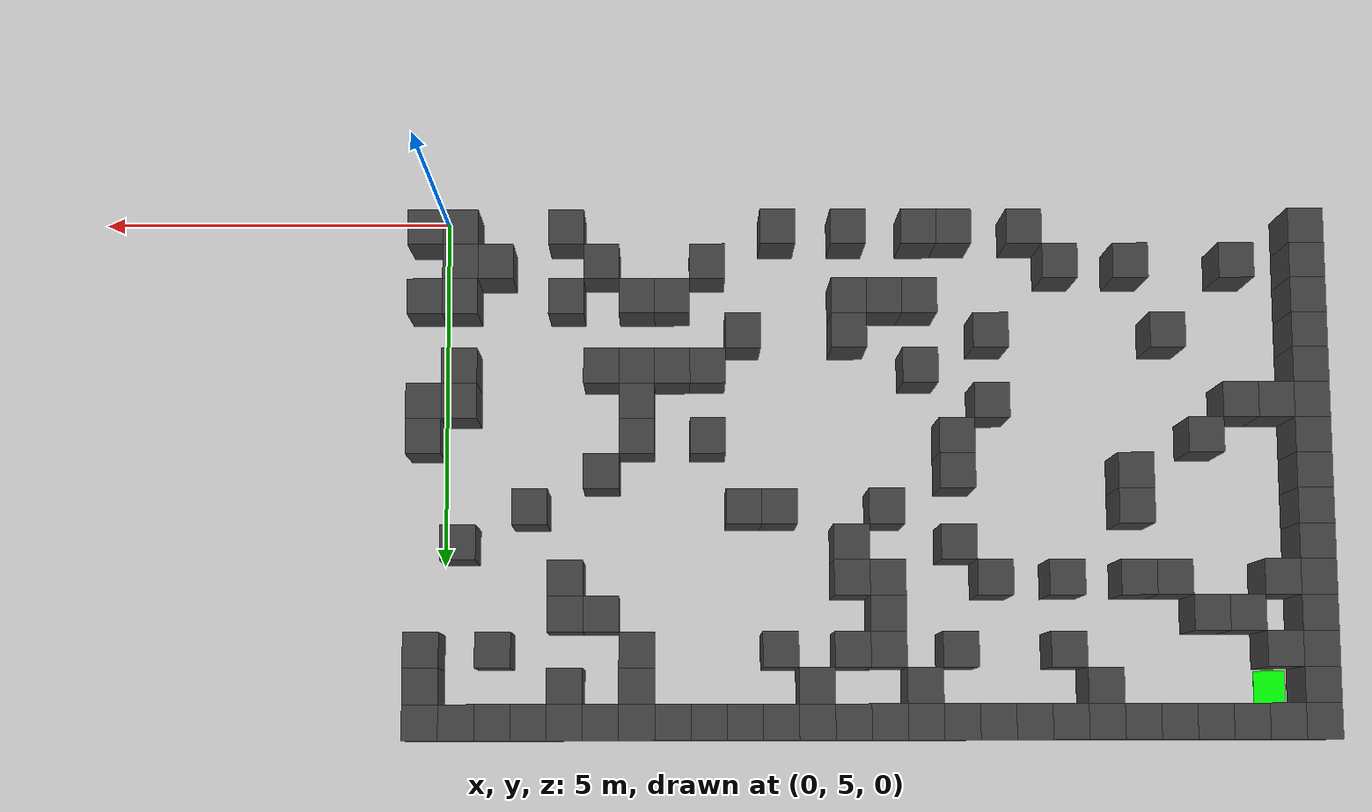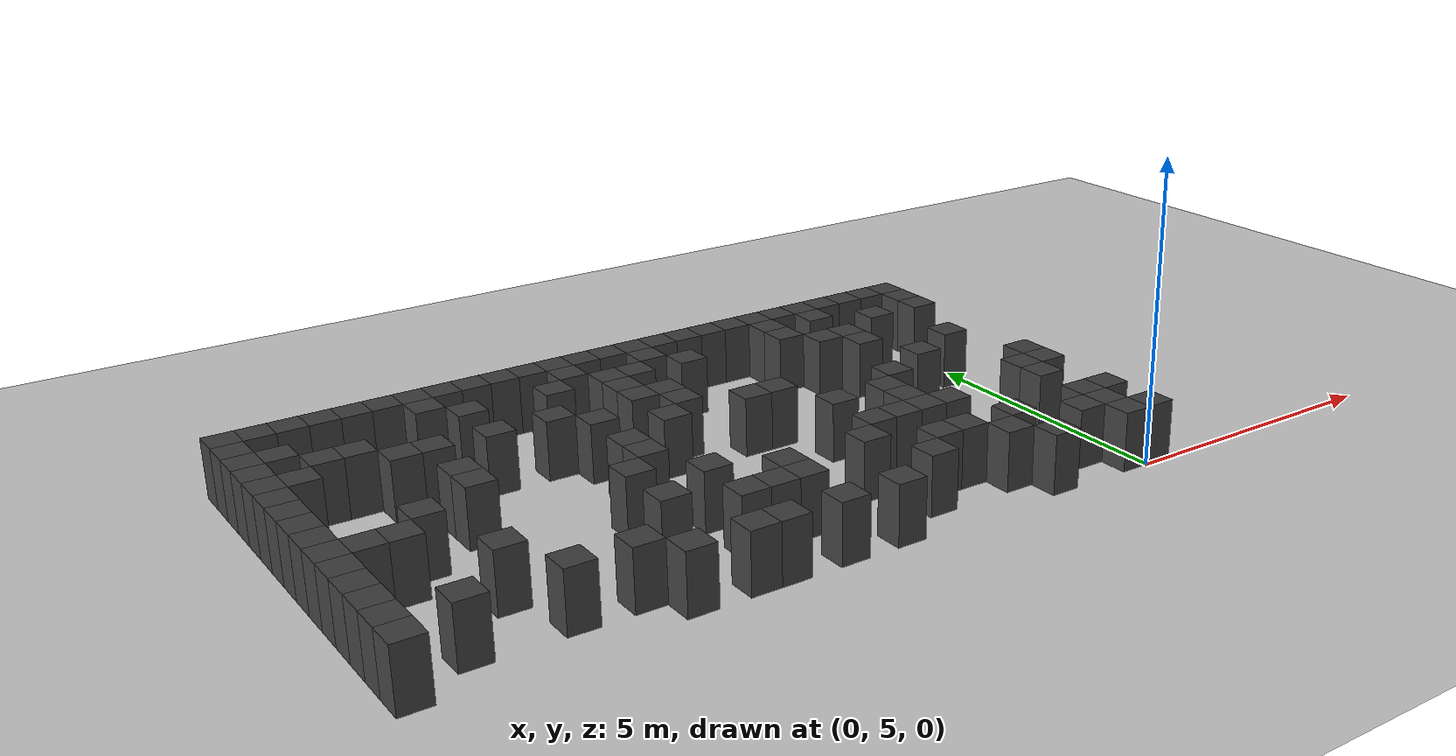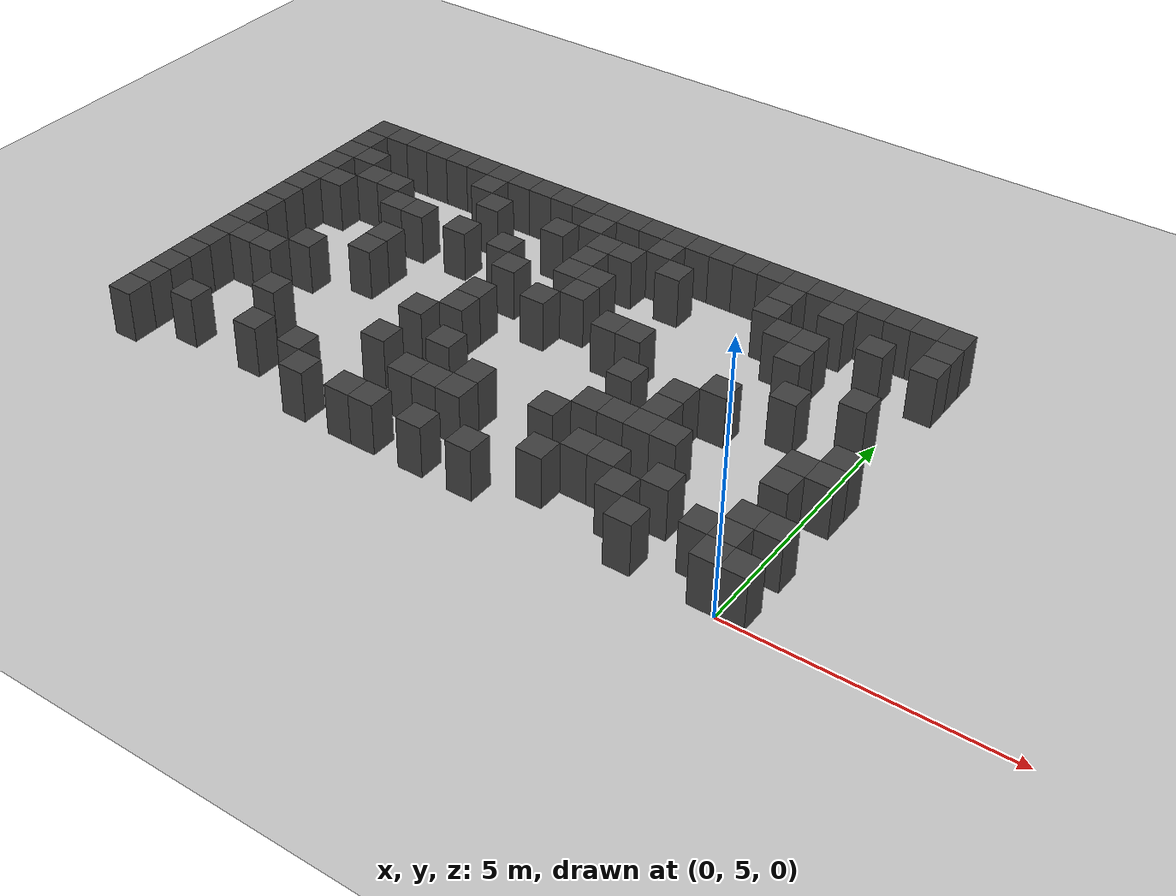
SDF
<sdf version="1.7">
 <world name="map_4951">
  <model name="ground_plane">
   <static>true</static>
   <link name="link">
    <collision name="collision">
     <geometry><plane><normal>0 0 1</normal><size>200 200</size></plane></geometry>
    </collision>
    <visual name="visual">
     <geometry><plane><normal>0 0 1</normal><size>200 200</size></plane></geometry>
     <material><ambient>0.8 0.8 0.8 1</ambient><diffuse>0.8 0.8 0.8 1</diffuse></material>
    </visual>
   </link>
  </model>
  <model name="maze_environment">
   <static>true</static>
   <link name="wall_0">
    <pose>-12.250 12.250 0.500 0 0 0</pose>
    <collision name="col"><geometry><box><size>0.5 0.5 1.0</size></box></geometry></collision>
    <visual name="vis">
     <geometry><box><size>0.5 0.5 1.0</size></box></geometry>
     <material><ambient>0.15 0.15 0.15 1</ambient><diffuse>0.25 0.25 0.25 1</diffuse></material>
    </visual>
   </link>
   <link name="wall_1">
    <pose>-11.750 12.250 0.500 0 0 0</pose>
    <collision name="col"><geometry><box><size>0.5 0.5 1.0</size></box></geometry></collision>
    <visual name="vis">
     <geometry><box><size>0.5 0.5 1.0</size></box></geometry>
     <material><ambient>0.15 0.15 0.15 1</ambient><diffuse>0.25 0.25 0.25 1</diffuse></material>
    </visual>
   </link>
   <link name="wall_2">
    <pose>-11.250 12.250 0.500 0 0 0</pose>
    <collision name="col"><geometry><box><size>0.5 0.5 1.0</size></box></geometry></collision>
    <visual name="vis">
     <geometry><box><size>0.5 0.5 1.0</size></box></geometry>
     <material><ambient>0.15 0.15 0.15 1</ambient><diffuse>0.25 0.25 0.25 1</diffuse></material>
    </visual>
   </link>
   <link name="wall_3">
    <pose>-10.750 12.250 0.500 0 0 0</pose>
    <collision name="col"><geometry><box><size>0.5 0.5 1.0</size></box></geometry></collision>
    <visual name="vis">
     <geometry><box><size>0.5 0.5 1.0</size></box></geometry>
     <material><ambient>0.15 0.15 0.15 1</ambient><diffuse>0.25 0.25 0.25 1</diffuse></material>
    </visual>
   </link>
   <link name="wall_4">
    <pose>-10.250 12.250 0.500 0 0 0</pose>
    <collision name="col"><geometry><box><size>0.5 0.5 1.0</size></box></geometry></collision>
    <visual name="vis">
     <geometry><box><size>0.5 0.5 1.0</size></box></geometry>
     <material><ambient>0.15 0.15 0.15 1</ambient><diffuse>0.25 0.25 0.25 1</diffuse></material>
    </visual>
   </link>
   <link name="wall_5">
    <pose>-9.750 12.250 0.500 0 0 0</pose>
    <collision name="col"><geometry><box><size>0.5 0.5 1.0</size></box></geometry></collision>
    <visual name="vis">
     <geometry><box><size>0.5 0.5 1.0</size></box></geometry>
     <material><ambient>0.15 0.15 0.15 1</ambient><diffuse>0.25 0.25 0.25 1</diffuse></material>
    </visual>
   </link>
   <link name="wall_6">
    <pose>-9.250 12.250 0.500 0 0 0</pose>
    <collision name="col"><geometry><box><size>0.5 0.5 1.0</size></box></geometry></collision>
    <visual name="vis">
     <geometry><box><size>0.5 0.5 1.0</size></box></geometry>
     <material><ambient>0.15 0.15 0.15 1</ambient><diffuse>0.25 0.25 0.25 1</diffuse></material>
    </visual>
   </link>
   <link name="wall_7">
    <pose>-8.750 12.250 0.500 0 0 0</pose>
    <collision name="col"><geometry><box><size>0.5 0.5 1.0</size></box></geometry></collision>
    <visual name="vis">
     <geometry><box><size>0.5 0.5 1.0</size></box></geometry>
     <material><ambient>0.15 0.15 0.15 1</ambient><diffuse>0.25 0.25 0.25 1</diffuse></material>
    </visual>
   </link>
   <link name="wall_8">
    <pose>-8.250 12.250 0.500 0 0 0</pose>
    <collision name="col"><geometry><box><size>0.5 0.5 1.0</size></box></geometry></collision>
    <visual name="vis">
     <geometry><box><size>0.5 0.5 1.0</size></box></geometry>
     <material><ambient>0.15 0.15 0.15 1</ambient><diffuse>0.25 0.25 0.25 1</diffuse></material>
    </visual>
   </link>
   <link name="wall_9">
    <pose>-7.750 12.250 0.500 0 0 0</pose>
    <collision name="col"><geometry><box><size>0.5 0.5 1.0</size></box></geometry></collision>
    <visual name="vis">
     <geometry><box><size>0.5 0.5 1.0</size></box></geometry>
     <material><ambient>0.15 0.15 0.15 1</ambient><diffuse>0.25 0.25 0.25 1</diffuse></material>
    </visual>
   </link>
   <link name="wall_10">
    <pose>-7.250 12.250 0.500 0 0 0</pose>
    <collision name="col"><geometry><box><size>0.5 0.5 1.0</size></box></geometry></collision>
    <visual name="vis">
     <geometry><box><size>0.5 0.5 1.0</size></box></geometry>
     <material><ambient>0.15 0.15 0.15 1</ambient><diffuse>0.25 0.25 0.25 1</diffuse></material>
    </visual>
   </link>
   <link name="wall_11">
    <pose>-6.750 12.250 0.500 0 0 0</pose>
    <collision name="col"><geometry><box><size>0.5 0.5 1.0</size></box></geometry></collision>
    <visual name="vis">
     <geometry><box><size>0.5 0.5 1.0</size></box></geometry>
     <material><ambient>0.15 0.15 0.15 1</ambient><diffuse>0.25 0.25 0.25 1</diffuse></material>
    </visual>
   </link>
   <link name="wall_12">
    <pose>-6.250 12.250 0.500 0 0 0</pose>
    <collision name="col"><geometry><box><size>0.5 0.5 1.0</size></box></geometry></collision>
    <visual name="vis">
     <geometry><box><size>0.5 0.5 1.0</size></box></geometry>
     <material><ambient>0.15 0.15 0.15 1</ambient><diffuse>0.25 0.25 0.25 1</diffuse></material>
    </visual>
   </link>
   <link name="wall_13">
    <pose>-5.750 12.250 0.500 0 0 0</pose>
    <collision name="col"><geometry><box><size>0.5 0.5 1.0</size></box></geometry></collision>
    <visual name="vis">
     <geometry><box><size>0.5 0.5 1.0</size></box></geometry>
     <material><ambient>0.15 0.15 0.15 1</ambient><diffuse>0.25 0.25 0.25 1</diffuse></material>
    </visual>
   </link>
   <link name="wall_14">
    <pose>-5.250 12.250 0.500 0 0 0</pose>
    <collision name="col"><geometry><box><size>0.5 0.5 1.0</size></box></geometry></collision>
    <visual name="vis">
     <geometry><box><size>0.5 0.5 1.0</size></box></geometry>
     <material><ambient>0.15 0.15 0.15 1</ambient><diffuse>0.25 0.25 0.25 1</diffuse></material>
    </visual>
   </link>
   <link name="wall_15">
    <pose>-4.750 12.250 0.500 0 0 0</pose>
    <collision name="col"><geometry><box><size>0.5 0.5 1.0</size></box></geometry></collision>
    <visual name="vis">
     <geometry><box><size>0.5 0.5 1.0</size></box></geometry>
     <material><ambient>0.15 0.15 0.15 1</ambient><diffuse>0.25 0.25 0.25 1</diffuse></material>
    </visual>
   </link>
   <link name="wall_16">
    <pose>-4.250 12.250 0.500 0 0 0</pose>
    <collision name="col"><geometry><box><size>0.5 0.5 1.0</size></box></geometry></collision>
    <visual name="vis">
     <geometry><box><size>0.5 0.5 1.0</size></box></geometry>
     <material><ambient>0.15 0.15 0.15 1</ambient><diffuse>0.25 0.25 0.25 1</diffuse></material>
    </visual>
   </link>
   <link name="wall_17">
    <pose>-3.750 12.250 0.500 0 0 0</pose>
    <collision name="col"><geometry><box><size>0.5 0.5 1.0</size></box></geometry></collision>
    <visual name="vis">
     <geometry><box><size>0.5 0.5 1.0</size></box></geometry>
     <material><ambient>0.15 0.15 0.15 1</ambient><diffuse>0.25 0.25 0.25 1</diffuse></material>
    </visual>
   </link>
   <link name="wall_18">
    <pose>-3.250 12.250 0.500 0 0 0</pose>
    <collision name="col"><geometry><box><size>0.5 0.5 1.0</size></box></geometry></collision>
    <visual name="vis">
     <geometry><box><size>0.5 0.5 1.0</size></box></geometry>
     <material><ambient>0.15 0.15 0.15 1</ambient><diffuse>0.25 0.25 0.25 1</diffuse></material>
    </visual>
   </link>
   <link name="wall_19">
    <pose>-2.750 12.250 0.500 0 0 0</pose>
    <collision name="col"><geometry><box><size>0.5 0.5 1.0</size></box></geometry></collision>
    <visual name="vis">
     <geometry><box><size>0.5 0.5 1.0</size></box></geometry>
     <material><ambient>0.15 0.15 0.15 1</ambient><diffuse>0.25 0.25 0.25 1</diffuse></material>
    </visual>
   </link>
   <link name="wall_20">
    <pose>-2.250 12.250 0.500 0 0 0</pose>
    <collision name="col"><geometry><box><size>0.5 0.5 1.0</size></box></geometry></collision>
    <visual name="vis">
     <geometry><box><size>0.5 0.5 1.0</size></box></geometry>
     <material><ambient>0.15 0.15 0.15 1</ambient><diffuse>0.25 0.25 0.25 1</diffuse></material>
    </visual>
   </link>
   <link name="wall_21">
    <pose>-1.750 12.250 0.500 0 0 0</pose>
    <collision name="col"><geometry><box><size>0.5 0.5 1.0</size></box></geometry></collision>
    <visual name="vis">
     <geometry><box><size>0.5 0.5 1.0</size></box></geometry>
     <material><ambient>0.15 0.15 0.15 1</ambient><diffuse>0.25 0.25 0.25 1</diffuse></material>
    </visual>
   </link>
   <link name="wall_22">
    <pose>-1.250 12.250 0.500 0 0 0</pose>
    <collision name="col"><geometry><box><size>0.5 0.5 1.0</size></box></geometry></collision>
    <visual name="vis">
     <geometry><box><size>0.5 0.5 1.0</size></box></geometry>
     <material><ambient>0.15 0.15 0.15 1</ambient><diffuse>0.25 0.25 0.25 1</diffuse></material>
    </visual>
   </link>
   <link name="wall_23">
    <pose>-0.750 12.250 0.500 0 0 0</pose>
    <collision name="col"><geometry><box><size>0.5 0.5 1.0</size></box></geometry></collision>
    <visual name="vis">
     <geometry><box><size>0.5 0.5 1.0</size></box></geometry>
     <material><ambient>0.15 0.15 0.15 1</ambient><diffuse>0.25 0.25 0.25 1</diffuse></material>
    </visual>
   </link>
   <link name="wall_24">
    <pose>-0.250 12.250 0.500 0 0 0</pose>
    <collision name="col"><geometry><box><size>0.5 0.5 1.0</size></box></geometry></collision>
    <visual name="vis">
     <geometry><box><size>0.5 0.5 1.0</size></box></geometry>
     <material><ambient>0.15 0.15 0.15 1</ambient><diffuse>0.25 0.25 0.25 1</diffuse></material>
    </visual>
   </link>
   <link name="wall_25">
    <pose>0.250 12.250 0.500 0 0 0</pose>
    <collision name="col"><geometry><box><size>0.5 0.5 1.0</size></box></geometry></collision>
    <visual name="vis">
     <geometry><box><size>0.5 0.5 1.0</size></box></geometry>
     <material><ambient>0.15 0.15 0.15 1</ambient><diffuse>0.25 0.25 0.25 1</diffuse></material>
    </visual>
   </link>
   <link name="wall_50">
    <pose>-12.250 11.750 0.500 0 0 0</pose>
    <collision name="col"><geometry><box><size>0.5 0.5 1.0</size></box></geometry></collision>
    <visual name="vis">
     <geometry><box><size>0.5 0.5 1.0</size></box></geometry>
     <material><ambient>0.15 0.15 0.15 1</ambient><diffuse>0.25 0.25 0.25 1</diffuse></material>
    </visual>
   </link>
   <link name="wall_51">
    <pose>-9.250 11.750 0.500 0 0 0</pose>
    <collision name="col"><geometry><box><size>0.5 0.5 1.0</size></box></geometry></collision>
    <visual name="vis">
     <geometry><box><size>0.5 0.5 1.0</size></box></geometry>
     <material><ambient>0.15 0.15 0.15 1</ambient><diffuse>0.25 0.25 0.25 1</diffuse></material>
    </visual>
   </link>
   <link name="wall_52">
    <pose>-6.750 11.750 0.500 0 0 0</pose>
    <collision name="col"><geometry><box><size>0.5 0.5 1.0</size></box></geometry></collision>
    <visual name="vis">
     <geometry><box><size>0.5 0.5 1.0</size></box></geometry>
     <material><ambient>0.15 0.15 0.15 1</ambient><diffuse>0.25 0.25 0.25 1</diffuse></material>
    </visual>
   </link>
   <link name="wall_53">
    <pose>-5.250 11.750 0.500 0 0 0</pose>
    <collision name="col"><geometry><box><size>0.5 0.5 1.0</size></box></geometry></collision>
    <visual name="vis">
     <geometry><box><size>0.5 0.5 1.0</size></box></geometry>
     <material><ambient>0.15 0.15 0.15 1</ambient><diffuse>0.25 0.25 0.25 1</diffuse></material>
    </visual>
   </link>
   <link name="wall_54">
    <pose>-2.750 11.750 0.500 0 0 0</pose>
    <collision name="col"><geometry><box><size>0.5 0.5 1.0</size></box></geometry></collision>
    <visual name="vis">
     <geometry><box><size>0.5 0.5 1.0</size></box></geometry>
     <material><ambient>0.15 0.15 0.15 1</ambient><diffuse>0.25 0.25 0.25 1</diffuse></material>
    </visual>
   </link>
   <link name="wall_55">
    <pose>-1.750 11.750 0.500 0 0 0</pose>
    <collision name="col"><geometry><box><size>0.5 0.5 1.0</size></box></geometry></collision>
    <visual name="vis">
     <geometry><box><size>0.5 0.5 1.0</size></box></geometry>
     <material><ambient>0.15 0.15 0.15 1</ambient><diffuse>0.25 0.25 0.25 1</diffuse></material>
    </visual>
   </link>
   <link name="wall_56">
    <pose>0.250 11.750 0.500 0 0 0</pose>
    <collision name="col"><geometry><box><size>0.5 0.5 1.0</size></box></geometry></collision>
    <visual name="vis">
     <geometry><box><size>0.5 0.5 1.0</size></box></geometry>
     <material><ambient>0.15 0.15 0.15 1</ambient><diffuse>0.25 0.25 0.25 1</diffuse></material>
    </visual>
   </link>
   <link name="wall_64">
    <pose>-12.250 11.250 0.500 0 0 0</pose>
    <collision name="col"><geometry><box><size>0.5 0.5 1.0</size></box></geometry></collision>
    <visual name="vis">
     <geometry><box><size>0.5 0.5 1.0</size></box></geometry>
     <material><ambient>0.15 0.15 0.15 1</ambient><diffuse>0.25 0.25 0.25 1</diffuse></material>
    </visual>
   </link>
   <link name="wall_65">
    <pose>-11.750 11.250 0.500 0 0 0</pose>
    <collision name="col"><geometry><box><size>0.5 0.5 1.0</size></box></geometry></collision>
    <visual name="vis">
     <geometry><box><size>0.5 0.5 1.0</size></box></geometry>
     <material><ambient>0.15 0.15 0.15 1</ambient><diffuse>0.25 0.25 0.25 1</diffuse></material>
    </visual>
   </link>
   <link name="wall_66">
    <pose>-8.750 11.250 0.500 0 0 0</pose>
    <collision name="col"><geometry><box><size>0.5 0.5 1.0</size></box></geometry></collision>
    <visual name="vis">
     <geometry><box><size>0.5 0.5 1.0</size></box></geometry>
     <material><ambient>0.15 0.15 0.15 1</ambient><diffuse>0.25 0.25 0.25 1</diffuse></material>
    </visual>
   </link>
   <link name="wall_67">
    <pose>-7.250 11.250 0.500 0 0 0</pose>
    <collision name="col"><geometry><box><size>0.5 0.5 1.0</size></box></geometry></collision>
    <visual name="vis">
     <geometry><box><size>0.5 0.5 1.0</size></box></geometry>
     <material><ambient>0.15 0.15 0.15 1</ambient><diffuse>0.25 0.25 0.25 1</diffuse></material>
    </visual>
   </link>
   <link name="wall_68">
    <pose>-6.250 11.250 0.500 0 0 0</pose>
    <collision name="col"><geometry><box><size>0.5 0.5 1.0</size></box></geometry></collision>
    <visual name="vis">
     <geometry><box><size>0.5 0.5 1.0</size></box></geometry>
     <material><ambient>0.15 0.15 0.15 1</ambient><diffuse>0.25 0.25 0.25 1</diffuse></material>
    </visual>
   </link>
   <link name="wall_69">
    <pose>-5.750 11.250 0.500 0 0 0</pose>
    <collision name="col"><geometry><box><size>0.5 0.5 1.0</size></box></geometry></collision>
    <visual name="vis">
     <geometry><box><size>0.5 0.5 1.0</size></box></geometry>
     <material><ambient>0.15 0.15 0.15 1</ambient><diffuse>0.25 0.25 0.25 1</diffuse></material>
    </visual>
   </link>
   <link name="wall_70">
    <pose>-4.750 11.250 0.500 0 0 0</pose>
    <collision name="col"><geometry><box><size>0.5 0.5 1.0</size></box></geometry></collision>
    <visual name="vis">
     <geometry><box><size>0.5 0.5 1.0</size></box></geometry>
     <material><ambient>0.15 0.15 0.15 1</ambient><diffuse>0.25 0.25 0.25 1</diffuse></material>
    </visual>
   </link>
   <link name="wall_71">
    <pose>-2.750 11.250 0.500 0 0 0</pose>
    <collision name="col"><geometry><box><size>0.5 0.5 1.0</size></box></geometry></collision>
    <visual name="vis">
     <geometry><box><size>0.5 0.5 1.0</size></box></geometry>
     <material><ambient>0.15 0.15 0.15 1</ambient><diffuse>0.25 0.25 0.25 1</diffuse></material>
    </visual>
   </link>
   <link name="wall_72">
    <pose>-0.750 11.250 0.500 0 0 0</pose>
    <collision name="col"><geometry><box><size>0.5 0.5 1.0</size></box></geometry></collision>
    <visual name="vis">
     <geometry><box><size>0.5 0.5 1.0</size></box></geometry>
     <material><ambient>0.15 0.15 0.15 1</ambient><diffuse>0.25 0.25 0.25 1</diffuse></material>
    </visual>
   </link>
   <link name="wall_73">
    <pose>0.250 11.250 0.500 0 0 0</pose>
    <collision name="col"><geometry><box><size>0.5 0.5 1.0</size></box></geometry></collision>
    <visual name="vis">
     <geometry><box><size>0.5 0.5 1.0</size></box></geometry>
     <material><ambient>0.15 0.15 0.15 1</ambient><diffuse>0.25 0.25 0.25 1</diffuse></material>
    </visual>
   </link>
   <link name="wall_79">
    <pose>-12.250 10.750 0.500 0 0 0</pose>
    <collision name="col"><geometry><box><size>0.5 0.5 1.0</size></box></geometry></collision>
    <visual name="vis">
     <geometry><box><size>0.5 0.5 1.0</size></box></geometry>
     <material><ambient>0.15 0.15 0.15 1</ambient><diffuse>0.25 0.25 0.25 1</diffuse></material>
    </visual>
   </link>
   <link name="wall_80">
    <pose>-11.250 10.750 0.500 0 0 0</pose>
    <collision name="col"><geometry><box><size>0.5 0.5 1.0</size></box></geometry></collision>
    <visual name="vis">
     <geometry><box><size>0.5 0.5 1.0</size></box></geometry>
     <material><ambient>0.15 0.15 0.15 1</ambient><diffuse>0.25 0.25 0.25 1</diffuse></material>
    </visual>
   </link>
   <link name="wall_81">
    <pose>-10.750 10.750 0.500 0 0 0</pose>
    <collision name="col"><geometry><box><size>0.5 0.5 1.0</size></box></geometry></collision>
    <visual name="vis">
     <geometry><box><size>0.5 0.5 1.0</size></box></geometry>
     <material><ambient>0.15 0.15 0.15 1</ambient><diffuse>0.25 0.25 0.25 1</diffuse></material>
    </visual>
   </link>
   <link name="wall_82">
    <pose>-6.250 10.750 0.500 0 0 0</pose>
    <collision name="col"><geometry><box><size>0.5 0.5 1.0</size></box></geometry></collision>
    <visual name="vis">
     <geometry><box><size>0.5 0.5 1.0</size></box></geometry>
     <material><ambient>0.15 0.15 0.15 1</ambient><diffuse>0.25 0.25 0.25 1</diffuse></material>
    </visual>
   </link>
   <link name="wall_83">
    <pose>-2.250 10.750 0.500 0 0 0</pose>
    <collision name="col"><geometry><box><size>0.5 0.5 1.0</size></box></geometry></collision>
    <visual name="vis">
     <geometry><box><size>0.5 0.5 1.0</size></box></geometry>
     <material><ambient>0.15 0.15 0.15 1</ambient><diffuse>0.25 0.25 0.25 1</diffuse></material>
    </visual>
   </link>
   <link name="wall_84">
    <pose>-1.750 10.750 0.500 0 0 0</pose>
    <collision name="col"><geometry><box><size>0.5 0.5 1.0</size></box></geometry></collision>
    <visual name="vis">
     <geometry><box><size>0.5 0.5 1.0</size></box></geometry>
     <material><ambient>0.15 0.15 0.15 1</ambient><diffuse>0.25 0.25 0.25 1</diffuse></material>
    </visual>
   </link>
   <link name="wall_91">
    <pose>-12.250 10.250 0.500 0 0 0</pose>
    <collision name="col"><geometry><box><size>0.5 0.5 1.0</size></box></geometry></collision>
    <visual name="vis">
     <geometry><box><size>0.5 0.5 1.0</size></box></geometry>
     <material><ambient>0.15 0.15 0.15 1</ambient><diffuse>0.25 0.25 0.25 1</diffuse></material>
    </visual>
   </link>
   <link name="wall_92">
    <pose>-11.750 10.250 0.500 0 0 0</pose>
    <collision name="col"><geometry><box><size>0.5 0.5 1.0</size></box></geometry></collision>
    <visual name="vis">
     <geometry><box><size>0.5 0.5 1.0</size></box></geometry>
     <material><ambient>0.15 0.15 0.15 1</ambient><diffuse>0.25 0.25 0.25 1</diffuse></material>
    </visual>
   </link>
   <link name="wall_93">
    <pose>-10.250 10.250 0.500 0 0 0</pose>
    <collision name="col"><geometry><box><size>0.5 0.5 1.0</size></box></geometry></collision>
    <visual name="vis">
     <geometry><box><size>0.5 0.5 1.0</size></box></geometry>
     <material><ambient>0.15 0.15 0.15 1</ambient><diffuse>0.25 0.25 0.25 1</diffuse></material>
    </visual>
   </link>
   <link name="wall_94">
    <pose>-9.750 10.250 0.500 0 0 0</pose>
    <collision name="col"><geometry><box><size>0.5 0.5 1.0</size></box></geometry></collision>
    <visual name="vis">
     <geometry><box><size>0.5 0.5 1.0</size></box></geometry>
     <material><ambient>0.15 0.15 0.15 1</ambient><diffuse>0.25 0.25 0.25 1</diffuse></material>
    </visual>
   </link>
   <link name="wall_95">
    <pose>-8.750 10.250 0.500 0 0 0</pose>
    <collision name="col"><geometry><box><size>0.5 0.5 1.0</size></box></geometry></collision>
    <visual name="vis">
     <geometry><box><size>0.5 0.5 1.0</size></box></geometry>
     <material><ambient>0.15 0.15 0.15 1</ambient><diffuse>0.25 0.25 0.25 1</diffuse></material>
    </visual>
   </link>
   <link name="wall_96">
    <pose>-7.750 10.250 0.500 0 0 0</pose>
    <collision name="col"><geometry><box><size>0.5 0.5 1.0</size></box></geometry></collision>
    <visual name="vis">
     <geometry><box><size>0.5 0.5 1.0</size></box></geometry>
     <material><ambient>0.15 0.15 0.15 1</ambient><diffuse>0.25 0.25 0.25 1</diffuse></material>
    </visual>
   </link>
   <link name="wall_97">
    <pose>-6.250 10.250 0.500 0 0 0</pose>
    <collision name="col"><geometry><box><size>0.5 0.5 1.0</size></box></geometry></collision>
    <visual name="vis">
     <geometry><box><size>0.5 0.5 1.0</size></box></geometry>
     <material><ambient>0.15 0.15 0.15 1</ambient><diffuse>0.25 0.25 0.25 1</diffuse></material>
    </visual>
   </link>
   <link name="wall_98">
    <pose>-5.750 10.250 0.500 0 0 0</pose>
    <collision name="col"><geometry><box><size>0.5 0.5 1.0</size></box></geometry></collision>
    <visual name="vis">
     <geometry><box><size>0.5 0.5 1.0</size></box></geometry>
     <material><ambient>0.15 0.15 0.15 1</ambient><diffuse>0.25 0.25 0.25 1</diffuse></material>
    </visual>
   </link>
   <link name="wall_99">
    <pose>-1.750 10.250 0.500 0 0 0</pose>
    <collision name="col"><geometry><box><size>0.5 0.5 1.0</size></box></geometry></collision>
    <visual name="vis">
     <geometry><box><size>0.5 0.5 1.0</size></box></geometry>
     <material><ambient>0.15 0.15 0.15 1</ambient><diffuse>0.25 0.25 0.25 1</diffuse></material>
    </visual>
   </link>
   <link name="wall_106">
    <pose>-12.250 9.750 0.500 0 0 0</pose>
    <collision name="col"><geometry><box><size>0.5 0.5 1.0</size></box></geometry></collision>
    <visual name="vis">
     <geometry><box><size>0.5 0.5 1.0</size></box></geometry>
     <material><ambient>0.15 0.15 0.15 1</ambient><diffuse>0.25 0.25 0.25 1</diffuse></material>
    </visual>
   </link>
   <link name="wall_107">
    <pose>-7.250 9.750 0.500 0 0 0</pose>
    <collision name="col"><geometry><box><size>0.5 0.5 1.0</size></box></geometry></collision>
    <visual name="vis">
     <geometry><box><size>0.5 0.5 1.0</size></box></geometry>
     <material><ambient>0.15 0.15 0.15 1</ambient><diffuse>0.25 0.25 0.25 1</diffuse></material>
    </visual>
   </link>
   <link name="wall_108">
    <pose>-5.750 9.750 0.500 0 0 0</pose>
    <collision name="col"><geometry><box><size>0.5 0.5 1.0</size></box></geometry></collision>
    <visual name="vis">
     <geometry><box><size>0.5 0.5 1.0</size></box></geometry>
     <material><ambient>0.15 0.15 0.15 1</ambient><diffuse>0.25 0.25 0.25 1</diffuse></material>
    </visual>
   </link>
   <link name="wall_109">
    <pose>-0.250 9.750 0.500 0 0 0</pose>
    <collision name="col"><geometry><box><size>0.5 0.5 1.0</size></box></geometry></collision>
    <visual name="vis">
     <geometry><box><size>0.5 0.5 1.0</size></box></geometry>
     <material><ambient>0.15 0.15 0.15 1</ambient><diffuse>0.25 0.25 0.25 1</diffuse></material>
    </visual>
   </link>
   <link name="wall_117">
    <pose>-12.250 9.250 0.500 0 0 0</pose>
    <collision name="col"><geometry><box><size>0.5 0.5 1.0</size></box></geometry></collision>
    <visual name="vis">
     <geometry><box><size>0.5 0.5 1.0</size></box></geometry>
     <material><ambient>0.15 0.15 0.15 1</ambient><diffuse>0.25 0.25 0.25 1</diffuse></material>
    </visual>
   </link>
   <link name="wall_118">
    <pose>-9.750 9.250 0.500 0 0 0</pose>
    <collision name="col"><geometry><box><size>0.5 0.5 1.0</size></box></geometry></collision>
    <visual name="vis">
     <geometry><box><size>0.5 0.5 1.0</size></box></geometry>
     <material><ambient>0.15 0.15 0.15 1</ambient><diffuse>0.25 0.25 0.25 1</diffuse></material>
    </visual>
   </link>
   <link name="wall_119">
    <pose>-6.250 9.250 0.500 0 0 0</pose>
    <collision name="col"><geometry><box><size>0.5 0.5 1.0</size></box></geometry></collision>
    <visual name="vis">
     <geometry><box><size>0.5 0.5 1.0</size></box></geometry>
     <material><ambient>0.15 0.15 0.15 1</ambient><diffuse>0.25 0.25 0.25 1</diffuse></material>
    </visual>
   </link>
   <link name="wall_120">
    <pose>-4.750 9.250 0.500 0 0 0</pose>
    <collision name="col"><geometry><box><size>0.5 0.5 1.0</size></box></geometry></collision>
    <visual name="vis">
     <geometry><box><size>0.5 0.5 1.0</size></box></geometry>
     <material><ambient>0.15 0.15 0.15 1</ambient><diffuse>0.25 0.25 0.25 1</diffuse></material>
    </visual>
   </link>
   <link name="wall_121">
    <pose>-4.250 9.250 0.500 0 0 0</pose>
    <collision name="col"><geometry><box><size>0.5 0.5 1.0</size></box></geometry></collision>
    <visual name="vis">
     <geometry><box><size>0.5 0.5 1.0</size></box></geometry>
     <material><ambient>0.15 0.15 0.15 1</ambient><diffuse>0.25 0.25 0.25 1</diffuse></material>
    </visual>
   </link>
   <link name="wall_122">
    <pose>-1.250 9.250 0.500 0 0 0</pose>
    <collision name="col"><geometry><box><size>0.5 0.5 1.0</size></box></geometry></collision>
    <visual name="vis">
     <geometry><box><size>0.5 0.5 1.0</size></box></geometry>
     <material><ambient>0.15 0.15 0.15 1</ambient><diffuse>0.25 0.25 0.25 1</diffuse></material>
    </visual>
   </link>
   <link name="wall_131">
    <pose>-12.250 8.750 0.500 0 0 0</pose>
    <collision name="col"><geometry><box><size>0.5 0.5 1.0</size></box></geometry></collision>
    <visual name="vis">
     <geometry><box><size>0.5 0.5 1.0</size></box></geometry>
     <material><ambient>0.15 0.15 0.15 1</ambient><diffuse>0.25 0.25 0.25 1</diffuse></material>
    </visual>
   </link>
   <link name="wall_132">
    <pose>-9.750 8.750 0.500 0 0 0</pose>
    <collision name="col"><geometry><box><size>0.5 0.5 1.0</size></box></geometry></collision>
    <visual name="vis">
     <geometry><box><size>0.5 0.5 1.0</size></box></geometry>
     <material><ambient>0.15 0.15 0.15 1</ambient><diffuse>0.25 0.25 0.25 1</diffuse></material>
    </visual>
   </link>
   <link name="wall_133">
    <pose>-7.250 8.750 0.500 0 0 0</pose>
    <collision name="col"><geometry><box><size>0.5 0.5 1.0</size></box></geometry></collision>
    <visual name="vis">
     <geometry><box><size>0.5 0.5 1.0</size></box></geometry>
     <material><ambient>0.15 0.15 0.15 1</ambient><diffuse>0.25 0.25 0.25 1</diffuse></material>
    </visual>
   </link>
   <link name="wall_134">
    <pose>-2.250 8.750 0.500 0 0 0</pose>
    <collision name="col"><geometry><box><size>0.5 0.5 1.0</size></box></geometry></collision>
    <visual name="vis">
     <geometry><box><size>0.5 0.5 1.0</size></box></geometry>
     <material><ambient>0.15 0.15 0.15 1</ambient><diffuse>0.25 0.25 0.25 1</diffuse></material>
    </visual>
   </link>
   <link name="wall_139">
    <pose>-12.250 8.250 0.500 0 0 0</pose>
    <collision name="col"><geometry><box><size>0.5 0.5 1.0</size></box></geometry></collision>
    <visual name="vis">
     <geometry><box><size>0.5 0.5 1.0</size></box></geometry>
     <material><ambient>0.15 0.15 0.15 1</ambient><diffuse>0.25 0.25 0.25 1</diffuse></material>
    </visual>
   </link>
   <link name="wall_140">
    <pose>-10.750 8.250 0.500 0 0 0</pose>
    <collision name="col"><geometry><box><size>0.5 0.5 1.0</size></box></geometry></collision>
    <visual name="vis">
     <geometry><box><size>0.5 0.5 1.0</size></box></geometry>
     <material><ambient>0.15 0.15 0.15 1</ambient><diffuse>0.25 0.25 0.25 1</diffuse></material>
    </visual>
   </link>
   <link name="wall_141">
    <pose>-7.250 8.250 0.500 0 0 0</pose>
    <collision name="col"><geometry><box><size>0.5 0.5 1.0</size></box></geometry></collision>
    <visual name="vis">
     <geometry><box><size>0.5 0.5 1.0</size></box></geometry>
     <material><ambient>0.15 0.15 0.15 1</ambient><diffuse>0.25 0.25 0.25 1</diffuse></material>
    </visual>
   </link>
   <link name="wall_142">
    <pose>-3.750 8.250 0.500 0 0 0</pose>
    <collision name="col"><geometry><box><size>0.5 0.5 1.0</size></box></geometry></collision>
    <visual name="vis">
     <geometry><box><size>0.5 0.5 1.0</size></box></geometry>
     <material><ambient>0.15 0.15 0.15 1</ambient><diffuse>0.25 0.25 0.25 1</diffuse></material>
    </visual>
   </link>
   <link name="wall_143">
    <pose>-2.750 8.250 0.500 0 0 0</pose>
    <collision name="col"><geometry><box><size>0.5 0.5 1.0</size></box></geometry></collision>
    <visual name="vis">
     <geometry><box><size>0.5 0.5 1.0</size></box></geometry>
     <material><ambient>0.15 0.15 0.15 1</ambient><diffuse>0.25 0.25 0.25 1</diffuse></material>
    </visual>
   </link>
   <link name="wall_144">
    <pose>0.250 8.250 0.500 0 0 0</pose>
    <collision name="col"><geometry><box><size>0.5 0.5 1.0</size></box></geometry></collision>
    <visual name="vis">
     <geometry><box><size>0.5 0.5 1.0</size></box></geometry>
     <material><ambient>0.15 0.15 0.15 1</ambient><diffuse>0.25 0.25 0.25 1</diffuse></material>
    </visual>
   </link>
   <link name="wall_152">
    <pose>-12.250 7.750 0.500 0 0 0</pose>
    <collision name="col"><geometry><box><size>0.5 0.5 1.0</size></box></geometry></collision>
    <visual name="vis">
     <geometry><box><size>0.5 0.5 1.0</size></box></geometry>
     <material><ambient>0.15 0.15 0.15 1</ambient><diffuse>0.25 0.25 0.25 1</diffuse></material>
    </visual>
   </link>
   <link name="wall_153">
    <pose>-11.750 7.750 0.500 0 0 0</pose>
    <collision name="col"><geometry><box><size>0.5 0.5 1.0</size></box></geometry></collision>
    <visual name="vis">
     <geometry><box><size>0.5 0.5 1.0</size></box></geometry>
     <material><ambient>0.15 0.15 0.15 1</ambient><diffuse>0.25 0.25 0.25 1</diffuse></material>
    </visual>
   </link>
   <link name="wall_154">
    <pose>-11.250 7.750 0.500 0 0 0</pose>
    <collision name="col"><geometry><box><size>0.5 0.5 1.0</size></box></geometry></collision>
    <visual name="vis">
     <geometry><box><size>0.5 0.5 1.0</size></box></geometry>
     <material><ambient>0.15 0.15 0.15 1</ambient><diffuse>0.25 0.25 0.25 1</diffuse></material>
    </visual>
   </link>
   <link name="wall_155">
    <pose>-7.750 7.750 0.500 0 0 0</pose>
    <collision name="col"><geometry><box><size>0.5 0.5 1.0</size></box></geometry></collision>
    <visual name="vis">
     <geometry><box><size>0.5 0.5 1.0</size></box></geometry>
     <material><ambient>0.15 0.15 0.15 1</ambient><diffuse>0.25 0.25 0.25 1</diffuse></material>
    </visual>
   </link>
   <link name="wall_156">
    <pose>-2.750 7.750 0.500 0 0 0</pose>
    <collision name="col"><geometry><box><size>0.5 0.5 1.0</size></box></geometry></collision>
    <visual name="vis">
     <geometry><box><size>0.5 0.5 1.0</size></box></geometry>
     <material><ambient>0.15 0.15 0.15 1</ambient><diffuse>0.25 0.25 0.25 1</diffuse></material>
    </visual>
   </link>
   <link name="wall_157">
    <pose>-0.250 7.750 0.500 0 0 0</pose>
    <collision name="col"><geometry><box><size>0.5 0.5 1.0</size></box></geometry></collision>
    <visual name="vis">
     <geometry><box><size>0.5 0.5 1.0</size></box></geometry>
     <material><ambient>0.15 0.15 0.15 1</ambient><diffuse>0.25 0.25 0.25 1</diffuse></material>
    </visual>
   </link>
   <link name="wall_158">
    <pose>0.250 7.750 0.500 0 0 0</pose>
    <collision name="col"><geometry><box><size>0.5 0.5 1.0</size></box></geometry></collision>
    <visual name="vis">
     <geometry><box><size>0.5 0.5 1.0</size></box></geometry>
     <material><ambient>0.15 0.15 0.15 1</ambient><diffuse>0.25 0.25 0.25 1</diffuse></material>
    </visual>
   </link>
   <link name="wall_167">
    <pose>-12.250 7.250 0.500 0 0 0</pose>
    <collision name="col"><geometry><box><size>0.5 0.5 1.0</size></box></geometry></collision>
    <visual name="vis">
     <geometry><box><size>0.5 0.5 1.0</size></box></geometry>
     <material><ambient>0.15 0.15 0.15 1</ambient><diffuse>0.25 0.25 0.25 1</diffuse></material>
    </visual>
   </link>
   <link name="wall_168">
    <pose>-6.750 7.250 0.500 0 0 0</pose>
    <collision name="col"><geometry><box><size>0.5 0.5 1.0</size></box></geometry></collision>
    <visual name="vis">
     <geometry><box><size>0.5 0.5 1.0</size></box></geometry>
     <material><ambient>0.15 0.15 0.15 1</ambient><diffuse>0.25 0.25 0.25 1</diffuse></material>
    </visual>
   </link>
   <link name="wall_169">
    <pose>-3.750 7.250 0.500 0 0 0</pose>
    <collision name="col"><geometry><box><size>0.5 0.5 1.0</size></box></geometry></collision>
    <visual name="vis">
     <geometry><box><size>0.5 0.5 1.0</size></box></geometry>
     <material><ambient>0.15 0.15 0.15 1</ambient><diffuse>0.25 0.25 0.25 1</diffuse></material>
    </visual>
   </link>
   <link name="wall_170">
    <pose>-3.250 7.250 0.500 0 0 0</pose>
    <collision name="col"><geometry><box><size>0.5 0.5 1.0</size></box></geometry></collision>
    <visual name="vis">
     <geometry><box><size>0.5 0.5 1.0</size></box></geometry>
     <material><ambient>0.15 0.15 0.15 1</ambient><diffuse>0.25 0.25 0.25 1</diffuse></material>
    </visual>
   </link>
   <link name="wall_171">
    <pose>-2.750 7.250 0.500 0 0 0</pose>
    <collision name="col"><geometry><box><size>0.5 0.5 1.0</size></box></geometry></collision>
    <visual name="vis">
     <geometry><box><size>0.5 0.5 1.0</size></box></geometry>
     <material><ambient>0.15 0.15 0.15 1</ambient><diffuse>0.25 0.25 0.25 1</diffuse></material>
    </visual>
   </link>
   <link name="wall_172">
    <pose>-2.250 7.250 0.500 0 0 0</pose>
    <collision name="col"><geometry><box><size>0.5 0.5 1.0</size></box></geometry></collision>
    <visual name="vis">
     <geometry><box><size>0.5 0.5 1.0</size></box></geometry>
     <material><ambient>0.15 0.15 0.15 1</ambient><diffuse>0.25 0.25 0.25 1</diffuse></material>
    </visual>
   </link>
   <link name="wall_173">
    <pose>-0.250 7.250 0.500 0 0 0</pose>
    <collision name="col"><geometry><box><size>0.5 0.5 1.0</size></box></geometry></collision>
    <visual name="vis">
     <geometry><box><size>0.5 0.5 1.0</size></box></geometry>
     <material><ambient>0.15 0.15 0.15 1</ambient><diffuse>0.25 0.25 0.25 1</diffuse></material>
    </visual>
   </link>
   <link name="wall_181">
    <pose>-12.250 6.750 0.500 0 0 0</pose>
    <collision name="col"><geometry><box><size>0.5 0.5 1.0</size></box></geometry></collision>
    <visual name="vis">
     <geometry><box><size>0.5 0.5 1.0</size></box></geometry>
     <material><ambient>0.15 0.15 0.15 1</ambient><diffuse>0.25 0.25 0.25 1</diffuse></material>
    </visual>
   </link>
   <link name="wall_182">
    <pose>-10.250 6.750 0.500 0 0 0</pose>
    <collision name="col"><geometry><box><size>0.5 0.5 1.0</size></box></geometry></collision>
    <visual name="vis">
     <geometry><box><size>0.5 0.5 1.0</size></box></geometry>
     <material><ambient>0.15 0.15 0.15 1</ambient><diffuse>0.25 0.25 0.25 1</diffuse></material>
    </visual>
   </link>
   <link name="wall_183">
    <pose>-7.750 6.750 0.500 0 0 0</pose>
    <collision name="col"><geometry><box><size>0.5 0.5 1.0</size></box></geometry></collision>
    <visual name="vis">
     <geometry><box><size>0.5 0.5 1.0</size></box></geometry>
     <material><ambient>0.15 0.15 0.15 1</ambient><diffuse>0.25 0.25 0.25 1</diffuse></material>
    </visual>
   </link>
   <link name="wall_184">
    <pose>-5.750 6.750 0.500 0 0 0</pose>
    <collision name="col"><geometry><box><size>0.5 0.5 1.0</size></box></geometry></collision>
    <visual name="vis">
     <geometry><box><size>0.5 0.5 1.0</size></box></geometry>
     <material><ambient>0.15 0.15 0.15 1</ambient><diffuse>0.25 0.25 0.25 1</diffuse></material>
    </visual>
   </link>
   <link name="wall_185">
    <pose>-4.250 6.750 0.500 0 0 0</pose>
    <collision name="col"><geometry><box><size>0.5 0.5 1.0</size></box></geometry></collision>
    <visual name="vis">
     <geometry><box><size>0.5 0.5 1.0</size></box></geometry>
     <material><ambient>0.15 0.15 0.15 1</ambient><diffuse>0.25 0.25 0.25 1</diffuse></material>
    </visual>
   </link>
   <link name="wall_190">
    <pose>-12.250 6.250 0.500 0 0 0</pose>
    <collision name="col"><geometry><box><size>0.5 0.5 1.0</size></box></geometry></collision>
    <visual name="vis">
     <geometry><box><size>0.5 0.5 1.0</size></box></geometry>
     <material><ambient>0.15 0.15 0.15 1</ambient><diffuse>0.25 0.25 0.25 1</diffuse></material>
    </visual>
   </link>
   <link name="wall_191">
    <pose>-6.750 6.250 0.500 0 0 0</pose>
    <collision name="col"><geometry><box><size>0.5 0.5 1.0</size></box></geometry></collision>
    <visual name="vis">
     <geometry><box><size>0.5 0.5 1.0</size></box></geometry>
     <material><ambient>0.15 0.15 0.15 1</ambient><diffuse>0.25 0.25 0.25 1</diffuse></material>
    </visual>
   </link>
   <link name="wall_192">
    <pose>-6.250 6.250 0.500 0 0 0</pose>
    <collision name="col"><geometry><box><size>0.5 0.5 1.0</size></box></geometry></collision>
    <visual name="vis">
     <geometry><box><size>0.5 0.5 1.0</size></box></geometry>
     <material><ambient>0.15 0.15 0.15 1</ambient><diffuse>0.25 0.25 0.25 1</diffuse></material>
    </visual>
   </link>
   <link name="wall_193">
    <pose>-5.750 6.250 0.500 0 0 0</pose>
    <collision name="col"><geometry><box><size>0.5 0.5 1.0</size></box></geometry></collision>
    <visual name="vis">
     <geometry><box><size>0.5 0.5 1.0</size></box></geometry>
     <material><ambient>0.15 0.15 0.15 1</ambient><diffuse>0.25 0.25 0.25 1</diffuse></material>
    </visual>
   </link>
   <link name="wall_194">
    <pose>-3.250 6.250 0.500 0 0 0</pose>
    <collision name="col"><geometry><box><size>0.5 0.5 1.0</size></box></geometry></collision>
    <visual name="vis">
     <geometry><box><size>0.5 0.5 1.0</size></box></geometry>
     <material><ambient>0.15 0.15 0.15 1</ambient><diffuse>0.25 0.25 0.25 1</diffuse></material>
    </visual>
   </link>
   <link name="wall_195">
    <pose>-2.750 6.250 0.500 0 0 0</pose>
    <collision name="col"><geometry><box><size>0.5 0.5 1.0</size></box></geometry></collision>
    <visual name="vis">
     <geometry><box><size>0.5 0.5 1.0</size></box></geometry>
     <material><ambient>0.15 0.15 0.15 1</ambient><diffuse>0.25 0.25 0.25 1</diffuse></material>
    </visual>
   </link>
   <link name="wall_196">
    <pose>-1.750 6.250 0.500 0 0 0</pose>
    <collision name="col"><geometry><box><size>0.5 0.5 1.0</size></box></geometry></collision>
    <visual name="vis">
     <geometry><box><size>0.5 0.5 1.0</size></box></geometry>
     <material><ambient>0.15 0.15 0.15 1</ambient><diffuse>0.25 0.25 0.25 1</diffuse></material>
    </visual>
   </link>
   <link name="wall_197">
    <pose>-0.250 6.250 0.500 0 0 0</pose>
    <collision name="col"><geometry><box><size>0.5 0.5 1.0</size></box></geometry></collision>
    <visual name="vis">
     <geometry><box><size>0.5 0.5 1.0</size></box></geometry>
     <material><ambient>0.15 0.15 0.15 1</ambient><diffuse>0.25 0.25 0.25 1</diffuse></material>
    </visual>
   </link>
   <link name="wall_198">
    <pose>0.250 6.250 0.500 0 0 0</pose>
    <collision name="col"><geometry><box><size>0.5 0.5 1.0</size></box></geometry></collision>
    <visual name="vis">
     <geometry><box><size>0.5 0.5 1.0</size></box></geometry>
     <material><ambient>0.15 0.15 0.15 1</ambient><diffuse>0.25 0.25 0.25 1</diffuse></material>
    </visual>
   </link>
   <link name="wall_203">
    <pose>-12.250 5.750 0.500 0 0 0</pose>
    <collision name="col"><geometry><box><size>0.5 0.5 1.0</size></box></geometry></collision>
    <visual name="vis">
     <geometry><box><size>0.5 0.5 1.0</size></box></geometry>
     <material><ambient>0.15 0.15 0.15 1</ambient><diffuse>0.25 0.25 0.25 1</diffuse></material>
    </visual>
   </link>
   <link name="wall_204">
    <pose>-11.250 5.750 0.500 0 0 0</pose>
    <collision name="col"><geometry><box><size>0.5 0.5 1.0</size></box></geometry></collision>
    <visual name="vis">
     <geometry><box><size>0.5 0.5 1.0</size></box></geometry>
     <material><ambient>0.15 0.15 0.15 1</ambient><diffuse>0.25 0.25 0.25 1</diffuse></material>
    </visual>
   </link>
   <link name="wall_205">
    <pose>-9.750 5.750 0.500 0 0 0</pose>
    <collision name="col"><geometry><box><size>0.5 0.5 1.0</size></box></geometry></collision>
    <visual name="vis">
     <geometry><box><size>0.5 0.5 1.0</size></box></geometry>
     <material><ambient>0.15 0.15 0.15 1</ambient><diffuse>0.25 0.25 0.25 1</diffuse></material>
    </visual>
   </link>
   <link name="wall_206">
    <pose>-8.750 5.750 0.500 0 0 0</pose>
    <collision name="col"><geometry><box><size>0.5 0.5 1.0</size></box></geometry></collision>
    <visual name="vis">
     <geometry><box><size>0.5 0.5 1.0</size></box></geometry>
     <material><ambient>0.15 0.15 0.15 1</ambient><diffuse>0.25 0.25 0.25 1</diffuse></material>
    </visual>
   </link>
   <link name="wall_207">
    <pose>-3.750 5.750 0.500 0 0 0</pose>
    <collision name="col"><geometry><box><size>0.5 0.5 1.0</size></box></geometry></collision>
    <visual name="vis">
     <geometry><box><size>0.5 0.5 1.0</size></box></geometry>
     <material><ambient>0.15 0.15 0.15 1</ambient><diffuse>0.25 0.25 0.25 1</diffuse></material>
    </visual>
   </link>
   <link name="wall_208">
    <pose>-2.250 5.750 0.500 0 0 0</pose>
    <collision name="col"><geometry><box><size>0.5 0.5 1.0</size></box></geometry></collision>
    <visual name="vis">
     <geometry><box><size>0.5 0.5 1.0</size></box></geometry>
     <material><ambient>0.15 0.15 0.15 1</ambient><diffuse>0.25 0.25 0.25 1</diffuse></material>
    </visual>
   </link>
   <link name="wall_209">
    <pose>-0.750 5.750 0.500 0 0 0</pose>
    <collision name="col"><geometry><box><size>0.5 0.5 1.0</size></box></geometry></collision>
    <visual name="vis">
     <geometry><box><size>0.5 0.5 1.0</size></box></geometry>
     <material><ambient>0.15 0.15 0.15 1</ambient><diffuse>0.25 0.25 0.25 1</diffuse></material>
    </visual>
   </link>
   <link name="wall_210">
    <pose>-0.250 5.750 0.500 0 0 0</pose>
    <collision name="col"><geometry><box><size>0.5 0.5 1.0</size></box></geometry></collision>
    <visual name="vis">
     <geometry><box><size>0.5 0.5 1.0</size></box></geometry>
     <material><ambient>0.15 0.15 0.15 1</ambient><diffuse>0.25 0.25 0.25 1</diffuse></material>
    </visual>
   </link>
   <link name="wall_218">
    <pose>-12.250 5.250 0.500 0 0 0</pose>
    <collision name="col"><geometry><box><size>0.5 0.5 1.0</size></box></geometry></collision>
    <visual name="vis">
     <geometry><box><size>0.5 0.5 1.0</size></box></geometry>
     <material><ambient>0.15 0.15 0.15 1</ambient><diffuse>0.25 0.25 0.25 1</diffuse></material>
    </visual>
   </link>
   <link name="wall_219">
    <pose>-8.250 5.250 0.500 0 0 0</pose>
    <collision name="col"><geometry><box><size>0.5 0.5 1.0</size></box></geometry></collision>
    <visual name="vis">
     <geometry><box><size>0.5 0.5 1.0</size></box></geometry>
     <material><ambient>0.15 0.15 0.15 1</ambient><diffuse>0.25 0.25 0.25 1</diffuse></material>
    </visual>
   </link>
   <link name="wall_220">
    <pose>-7.250 5.250 0.500 0 0 0</pose>
    <collision name="col"><geometry><box><size>0.5 0.5 1.0</size></box></geometry></collision>
    <visual name="vis">
     <geometry><box><size>0.5 0.5 1.0</size></box></geometry>
     <material><ambient>0.15 0.15 0.15 1</ambient><diffuse>0.25 0.25 0.25 1</diffuse></material>
    </visual>
   </link>
   <link name="wall_221">
    <pose>-6.750 5.250 0.500 0 0 0</pose>
    <collision name="col"><geometry><box><size>0.5 0.5 1.0</size></box></geometry></collision>
    <visual name="vis">
     <geometry><box><size>0.5 0.5 1.0</size></box></geometry>
     <material><ambient>0.15 0.15 0.15 1</ambient><diffuse>0.25 0.25 0.25 1</diffuse></material>
    </visual>
   </link>
   <link name="wall_222">
    <pose>-5.750 5.250 0.500 0 0 0</pose>
    <collision name="col"><geometry><box><size>0.5 0.5 1.0</size></box></geometry></collision>
    <visual name="vis">
     <geometry><box><size>0.5 0.5 1.0</size></box></geometry>
     <material><ambient>0.15 0.15 0.15 1</ambient><diffuse>0.25 0.25 0.25 1</diffuse></material>
    </visual>
   </link>
   <link name="wall_223">
    <pose>-4.750 5.250 0.500 0 0 0</pose>
    <collision name="col"><geometry><box><size>0.5 0.5 1.0</size></box></geometry></collision>
    <visual name="vis">
     <geometry><box><size>0.5 0.5 1.0</size></box></geometry>
     <material><ambient>0.15 0.15 0.15 1</ambient><diffuse>0.25 0.25 0.25 1</diffuse></material>
    </visual>
   </link>
   <link name="wall_224">
    <pose>-1.750 5.250 0.500 0 0 0</pose>
    <collision name="col"><geometry><box><size>0.5 0.5 1.0</size></box></geometry></collision>
    <visual name="vis">
     <geometry><box><size>0.5 0.5 1.0</size></box></geometry>
     <material><ambient>0.15 0.15 0.15 1</ambient><diffuse>0.25 0.25 0.25 1</diffuse></material>
    </visual>
   </link>
   <link name="wall_225">
    <pose>-0.250 5.250 0.500 0 0 0</pose>
    <collision name="col"><geometry><box><size>0.5 0.5 1.0</size></box></geometry></collision>
    <visual name="vis">
     <geometry><box><size>0.5 0.5 1.0</size></box></geometry>
     <material><ambient>0.15 0.15 0.15 1</ambient><diffuse>0.25 0.25 0.25 1</diffuse></material>
    </visual>
   </link>
   <link name="wall_226">
    <pose>0.250 5.250 0.500 0 0 0</pose>
    <collision name="col"><geometry><box><size>0.5 0.5 1.0</size></box></geometry></collision>
    <visual name="vis">
     <geometry><box><size>0.5 0.5 1.0</size></box></geometry>
     <material><ambient>0.15 0.15 0.15 1</ambient><diffuse>0.25 0.25 0.25 1</diffuse></material>
    </visual>
   </link>
   <link name="start_zone">
    <pose>-11.750 11.750 0.005 0 0 0</pose>
    <visual name="vis">
     <geometry><box><size>0.45 0.45 0.01</size></box></geometry>
     <material>
      <ambient>0.0 1.0 0.0 1</ambient>
      <diffuse>0.0 1.0 0.0 1</diffuse>
      <emissive>0.00 0.60 0.00 1</emissive>
     </material>
    </visual>
   </link>
  </model>
 </world>
</sdf>
